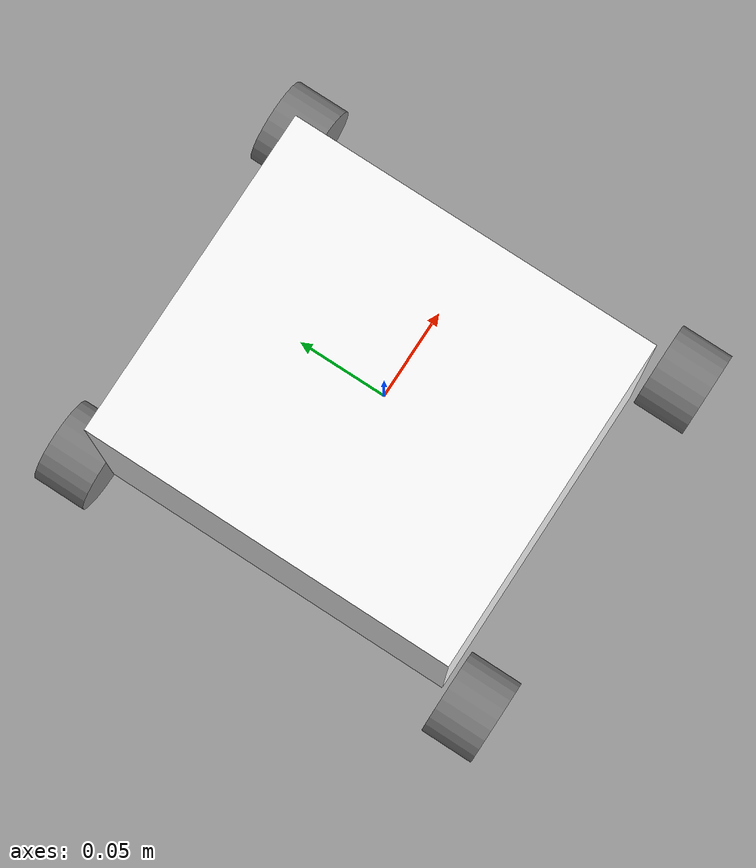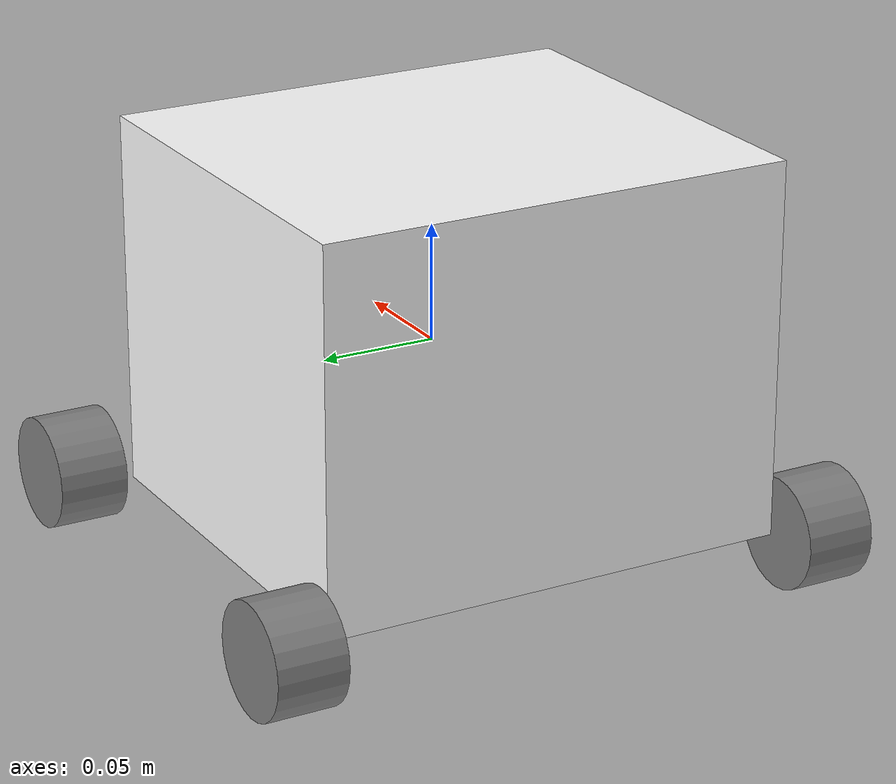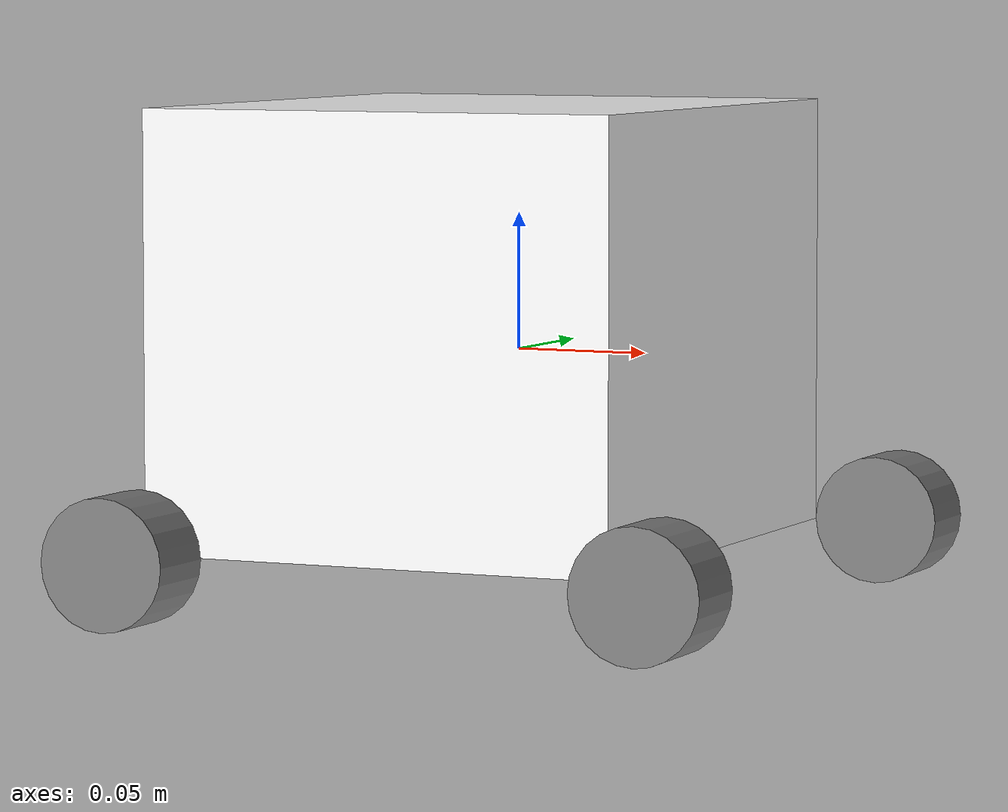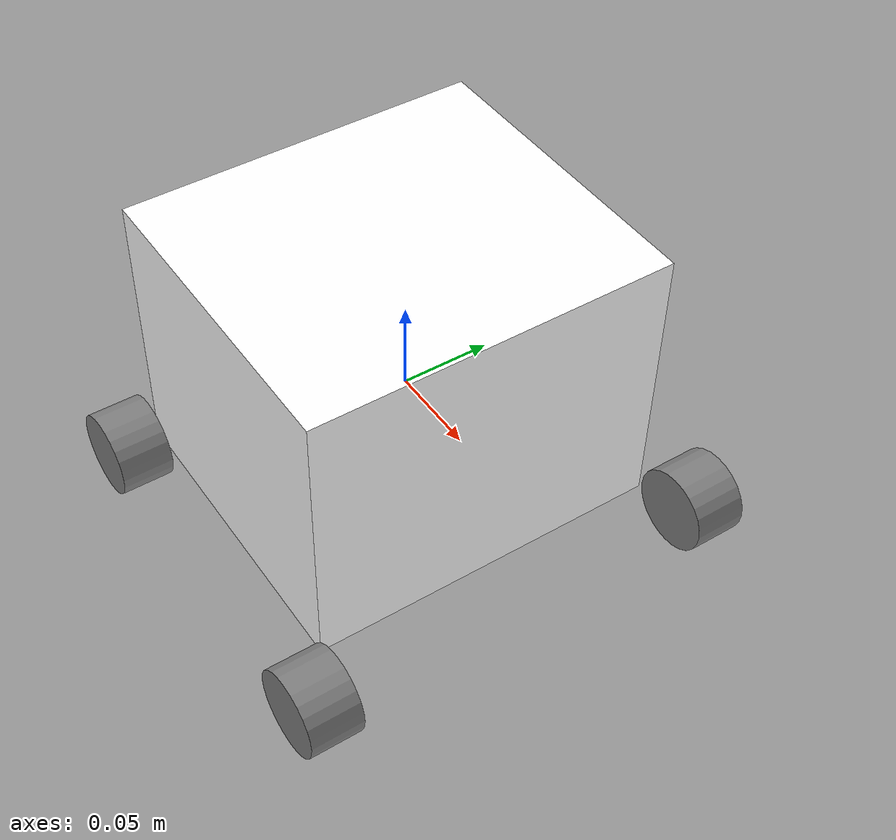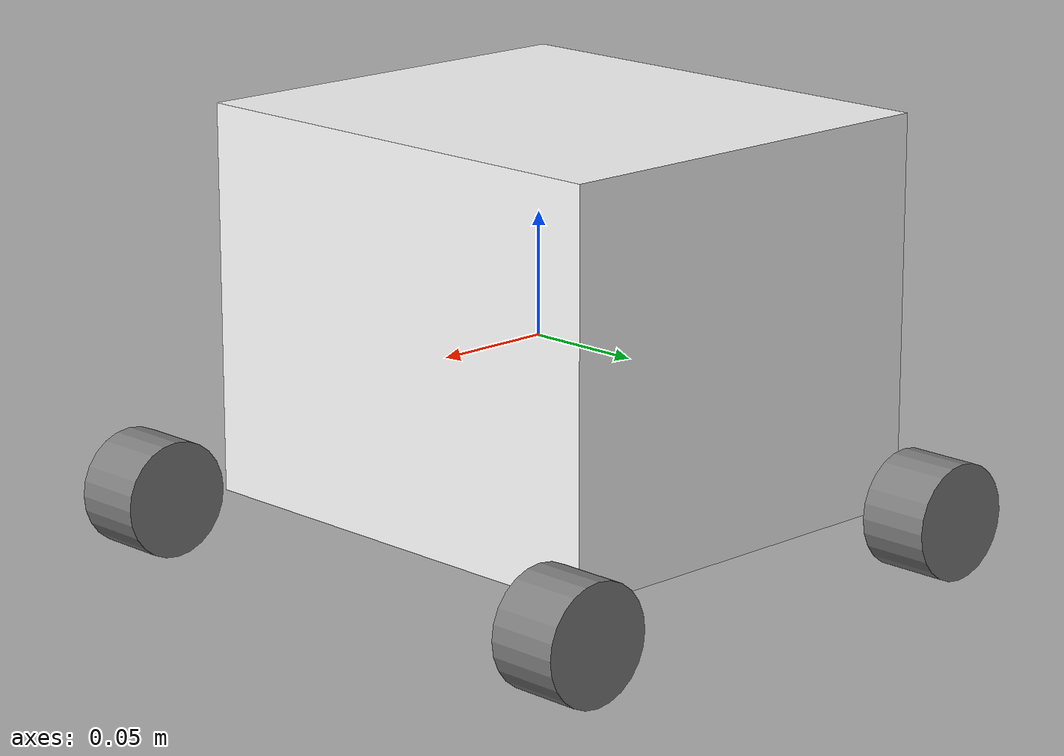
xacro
<?xml version="1.0"?>
<robot xmlns:xacro="http://www.ros.org/wiki/xacro"  name="robot">

    <xacro:arg name="use_ros2_control" default="true"/>
    <xacro:arg name="sim_mode" default="false"/>

    <xacro:include filename="robot_core.xacro" />

    <xacro:if value="$(arg use_ros2_control)">
        <xacro:include filename="ros2_control.xacro" />
    </xacro:if>
    <xacro:unless value="$(arg use_ros2_control)">
        <xacro:include filename="gazebo_control.xacro" />
    </xacro:unless>

</robot>

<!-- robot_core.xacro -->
<robot name="my_bot" xmlns:xacro="http://www.ros.org/wiki/xacro" >

    <xacro:include filename="inertial_macros.xacro"/>
    <xacro:include filename="robot_dimensions.xacro"/>

    <!-- BASE LINK -->

    <link name="base_link">

    </link>

    <!-- BASE_FOOTPRINT LINK -->

    <joint name="base_footprint_joint" type="fixed">
        <parent link="base_link"/>
        <child link="base_footprint"/>
        <origin xyz="0 0 0" rpy="0 0 0"/>
    </joint>

    <link name="base_footprint">

    </link>

    <!-- CHASSIS LINK -->

    <joint name="chassis_joint" type="fixed">
        <parent link="base_link"/>
        <child link="chassis"/>
        <origin xyz="${-wheel_xoff} 0.0 ${-wheel_zoff}"/>
    </joint>

    <link name="chassis">
        <visual>
            <origin xyz="${chassis_length/2} 0 ${chassis_height/2}"/>
            <geometry>
                <box size="${chassis_length} ${chassis_width} ${chassis_height}"/>
            </geometry>
            <material name="white"/>
        </visual>
        <collision>
            <origin xyz="${chassis_length/2} 0 ${chassis_height/2}"/>
            <geometry>
                <box size="${chassis_length} ${chassis_width} ${chassis_height}"/>
            </geometry>
        </collision>
        <xacro:inertial_box mass="${chassis_mass}" x="${chassis_length}" y="${chassis_width}" z="${chassis_height}">
            <origin xyz="${chassis_length/2} 0 ${chassis_height/2}" rpy="0 0 0"/>
        </xacro:inertial_box>
    </link>

    <gazebo reference="chassis">
        <material>Gazebo/White</material>
    </gazebo>

    <!-- wheels -->
	<xacro:macro name="wheel" params="prefix x_reflect y_reflect">
        <joint name="${prefix}_joint" type="continuous">
            <parent link="base_link"/>
            <child link="${prefix}_link"/>
            <origin xyz="${x_reflect*wheel_xoff} ${y_reflect*(chassis_width/2 + wheel_ygap)} ${-wheel_zoff}" rpy="-${pi/2} 0 0"/>
            <axis xyz="0 0 1"/>
        </joint>

        <link name ="${prefix}_link">
			<collision>
				<geometry>
					<cylinder radius="${wheel_radius}" length="${wheel_width}"/>
				</geometry>
			</collision>

            <xacro:inertial_cylinder mass="${wheel_mass}" length="${wheel_width}" radius="${wheel_radius}">
                <origin xyz="0 0 0" rpy="0 0 0"/>
            </xacro:inertial_cylinder>

			<visual>
				<geometry>
					<cylinder radius="${wheel_radius}" length="${wheel_width}"/>
				</geometry>
				<material name="Gray">
					<color rgba="0.5 0.5 0.5 1.0"/>
				</material>
			</visual>
	    </link>

	</xacro:macro>

	<xacro:wheel prefix="frontLeft" x_reflect="-1" y_reflect="-1"/>
	<xacro:wheel prefix="frontRight" x_reflect="-1" y_reflect="1"/>
	<xacro:wheel prefix="backLeft" x_reflect="1" y_reflect="-1"/>
	<xacro:wheel prefix="backRight" x_reflect="1" y_reflect="1"/>

</robot>

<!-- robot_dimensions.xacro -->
<robot xmlns:xacro="http://www.ros.org/wiki/xacro" >
    <!--constants to use for the robot dimensions-->
    <xacro:property name="chassis_length" value = ".18"/>
    <xacro:property name="chassis_width" value = ".203"/>
    <xacro:property name="chassis_height" value = ".16"/>
    <xacro:property name="chassis_mass" value = "1"/>

    <xacro:property name="wheel_radius" value = ".024"/>
    <xacro:property name="wheel_width" value = ".03"/>
    <xacro:property name="wheel_zoff" value = ".07"/>
    <xacro:property name="wheel_ygap" value = ".018"/>
    <xacro:property name="wheel_xoff" value = ".1015"/>
    <xacro:property name="wheel_mass" value = "1"/>

    <xacro:property name="support_height" value = ".203"/>
    <xacro:property name="support_radius" value = ".203"/>

    <xacro:property name="lidar_radius" value=".03"/>

    <!--constants to used for the robot sim colours-->
    <material name="white">
        <color rgba="1 1 1 1" />
    </material>

    <material name="orange">
        <color rgba="1 0.3 0.1 1"/>
    </material>

    <material name="blue">
        <color rgba="0.2 0.2 1 1"/>
    </material>

    <material name="black">
        <color rgba="0 0 0 1"/>
    </material>

</robot>
